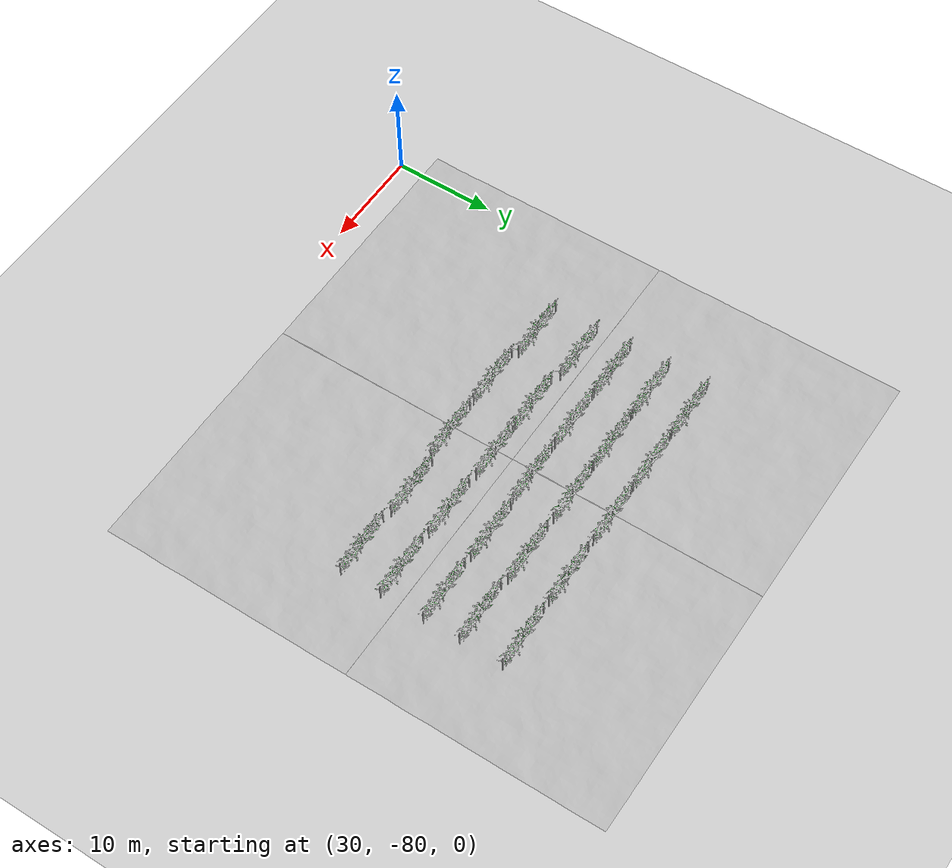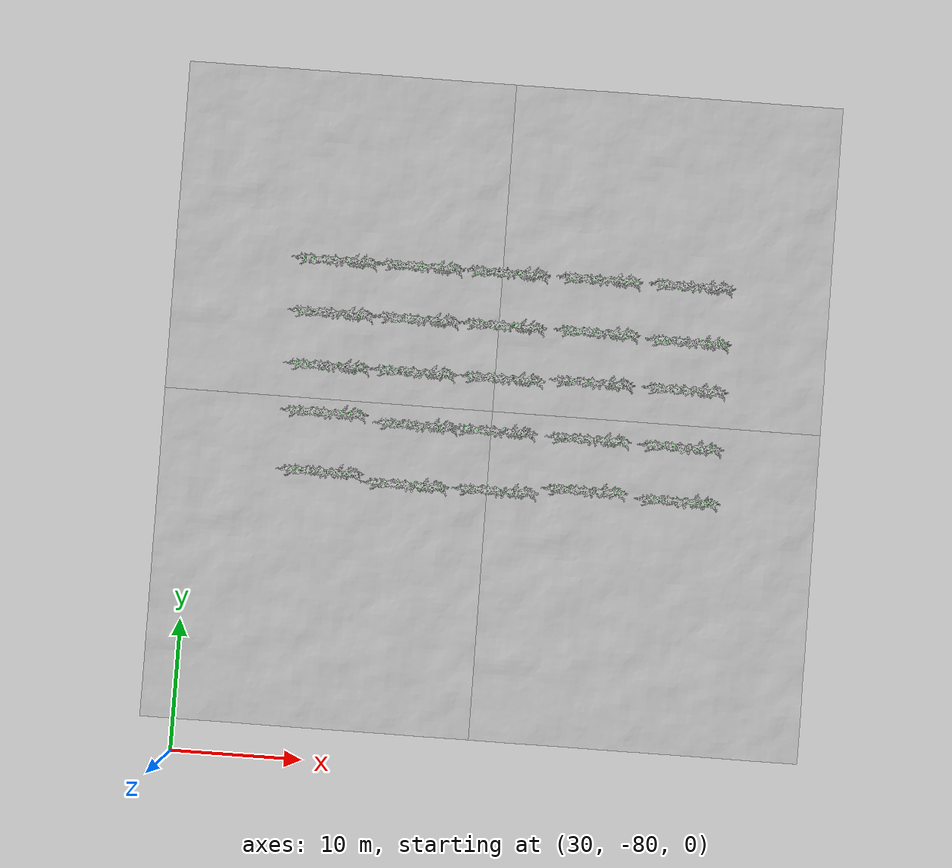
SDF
<sdf version="1.6">
 <world name="default">
  <light name="sun" type="directional">
   <pose>0 0 10 0 -0 0</pose>
   <diffuse>0.8 0.8 0.8 1</diffuse>
   <specular>0.2 0.2 0.2 1</specular>
   <attenuation>
    <range>1000</range>
    <constant>0.9</constant>
    <linear>0.01</linear>
    <quadratic>0.001</quadratic>
   </attenuation>
   <direction>-0.5 0.1 -0.9</direction>
  </light>
  <physics name="default_physics" default="0" type="ode">
   <real_time_update_rate>1000</real_time_update_rate>
   <real_time_factor>1</real_time_factor>
   <max_step_size>0.001</max_step_size>
  </physics>
  <gravity>0 0 -9.8</gravity>
  <magnetic_field>6e-06 2.3e-05 -4.2e-05</magnetic_field>
  <atmosphere type="adiabatic"/>
  <scene>
   <sky><clouds><speed>12</speed></clouds></sky>
   <shadows>1</shadows>
   <ambient>0.4 0.4 0.4 1</ambient>
   <background>0.7 0.7 0.7 1</background>
  </scene>
  <spherical_coordinates>
   <surface_model>EARTH_WGS84</surface_model>
   <latitude_deg>0</latitude_deg>
   <longitude_deg>0</longitude_deg>
   <elevation>0</elevation>
   <heading_deg>0</heading_deg>
  </spherical_coordinates>
  <model name="grass_ground_plane">
   <static>1</static>
   <link name="link">
    <collision name="collision">
     <geometry><plane><normal>0 0 1</normal><size>200 200</size></plane></geometry>
     <surface><friction><ode><mu>0.5</mu><mu2>0.5</mu2></ode></friction></surface>
    </collision>
    <visual name="visual">
     <cast_shadows>0</cast_shadows>
     <geometry><plane><normal>0 0 1</normal><size>200 200</size></plane></geometry>
     <material>
      <script>
       <uri>model://grass_ground_plane/materials/scripts/grass_ground_plane.material</uri>
       <name>GrassGroundPlane/Image</name>
      </script>
     </material>
    </visual>
   </link>
  </model>
  <model name="heightmap">
   <static>1</static>
   <link name="link">
    <collision name="collision">
     <geometry><mesh><uri>model://heightmap_realistic/meshes/heightmap.dae</uri></mesh></geometry>
    </collision>
    <visual name="visual">
     <geometry><mesh><uri>model://heightmap_realistic/meshes/heightmap.dae</uri></mesh></geometry>
    </visual>
   </link>
   <pose>40 -40 0 0 -0 0</pose>
  </model>
  <model name="heightmap_0">
   <static>1</static>
   <link name="link">
    <collision name="collision">
     <geometry><mesh><uri>model://heightmap_realistic/meshes/heightmap.dae</uri></mesh></geometry>
    </collision>
    <visual name="visual">
     <geometry><mesh><uri>model://heightmap_realistic/meshes/heightmap.dae</uri></mesh></geometry>
    </visual>
   </link>
   <pose>65 -40 0 0 -0 0</pose>
  </model>
  <model name="heightmap_1">
   <static>1</static>
   <link name="link">
    <collision name="collision">
     <geometry><mesh><uri>model://heightmap_realistic/meshes/heightmap.dae</uri></mesh></geometry>
    </collision>
    <visual name="visual">
     <geometry><mesh><uri>model://heightmap_realistic/meshes/heightmap.dae</uri></mesh></geometry>
    </visual>
   </link>
   <pose>65 -65 0 0 -0 0</pose>
  </model>
  <model name="heightmap_2">
   <static>1</static>
   <link name="link">
    <collision name="collision">
     <geometry><mesh><uri>model://heightmap_realistic/meshes/heightmap.dae</uri></mesh></geometry>
    </collision>
    <visual name="visual">
     <geometry><mesh><uri>model://heightmap_realistic/meshes/heightmap.dae</uri></mesh></geometry>
    </visual>
   </link>
   <pose>40 -65 0 0 -0 0</pose>
  </model>
  <model name="vine_t0_coarse">
   <static>1</static>
   <link name="link">
    <collision name="collision">
     <geometry><mesh><uri>model://vine_t0_coarse/meshes/vine_t0_coarse.dae</uri></mesh></geometry>
    </collision>
    <visual name="visual">
     <geometry><mesh><uri>model://vine_t0_coarse/meshes/vine_t0_coarse.dae</uri></mesh></geometry>
    </visual>
   </link>
   <pose>40 -42 0 0 -0 0</pose>
  </model>
  <model name="vine_t0_coarse_clone">
   <static>1</static>
   <link name="link">
    <collision name="collision">
     <geometry><mesh><uri>model://vine_t0_coarse/meshes/vine_t0_coarse.dae</uri></mesh></geometry>
    </collision>
    <visual name="visual">
     <geometry><mesh><uri>model://vine_t0_coarse/meshes/vine_t0_coarse.dae</uri></mesh></geometry>
    </visual>
   </link>
   <pose>46.5 -42 0 0 -0 0</pose>
  </model>
  <model name="vine_t0_coarse_clone_clone">
   <static>1</static>
   <link name="link">
    <collision name="collision">
     <geometry><mesh><uri>model://vine_t0_coarse/meshes/vine_t0_coarse.dae</uri></mesh></geometry>
    </collision>
    <visual name="visual">
     <geometry><mesh><uri>model://vine_t0_coarse/meshes/vine_t0_coarse.dae</uri></mesh></geometry>
    </visual>
   </link>
   <pose>53 -42 0 0 -0 0</pose>
  </model>
  <model name="vine_t0_coarse_clone_clone_0">
   <static>1</static>
   <link name="link">
    <collision name="collision">
     <geometry><mesh><uri>model://vine_t0_coarse/meshes/vine_t0_coarse.dae</uri></mesh></geometry>
    </collision>
    <visual name="visual">
     <geometry><mesh><uri>model://vine_t0_coarse/meshes/vine_t0_coarse.dae</uri></mesh></geometry>
    </visual>
   </link>
   <pose>60 -42 0 0 -0 0</pose>
  </model>
  <model name="vine_t0_coarse_clone_clone_1">
   <static>1</static>
   <link name="link">
    <collision name="collision">
     <geometry><mesh><uri>model://vine_t0_coarse/meshes/vine_t0_coarse.dae</uri></mesh></geometry>
    </collision>
    <visual name="visual">
     <geometry><mesh><uri>model://vine_t0_coarse/meshes/vine_t0_coarse.dae</uri></mesh></geometry>
    </visual>
   </link>
   <pose>67 -42 0 0 -0 0</pose>
  </model>
  <model name="vine_t0_coarse_clone_clone_2">
   <static>1</static>
   <link name="link">
    <collision name="collision">
     <geometry><mesh><uri>model://vine_t0_coarse/meshes/vine_t0_coarse.dae</uri></mesh></geometry>
    </collision>
    <visual name="visual">
     <geometry><mesh><uri>model://vine_t0_coarse/meshes/vine_t0_coarse.dae</uri></mesh></geometry>
    </visual>
   </link>
   <pose>40 -46 0 0 -0 0</pose>
  </model>
  <model name="vine_t0_coarse_clone_clone_3">
   <static>1</static>
   <link name="link">
    <collision name="collision">
     <geometry><mesh><uri>model://vine_t0_coarse/meshes/vine_t0_coarse.dae</uri></mesh></geometry>
    </collision>
    <visual name="visual">
     <geometry><mesh><uri>model://vine_t0_coarse/meshes/vine_t0_coarse.dae</uri></mesh></geometry>
    </visual>
   </link>
   <pose>40 -50 0 0 -0 0</pose>
  </model>
  <model name="vine_t0_coarse_clone_clone_4">
   <static>1</static>
   <link name="link">
    <collision name="collision">
     <geometry><mesh><uri>model://vine_t0_coarse/meshes/vine_t0_coarse.dae</uri></mesh></geometry>
    </collision>
    <visual name="visual">
     <geometry><mesh><uri>model://vine_t0_coarse/meshes/vine_t0_coarse.dae</uri></mesh></geometry>
    </visual>
   </link>
   <pose>40 -53.54 0 0 -0 0</pose>
  </model>
  <model name="vine_t0_coarse_clone_clone_5">
   <static>1</static>
   <link name="link">
    <collision name="collision">
     <geometry><mesh><uri>model://vine_t0_coarse/meshes/vine_t0_coarse.dae</uri></mesh></geometry>
    </collision>
    <visual name="visual">
     <geometry><mesh><uri>model://vine_t0_coarse/meshes/vine_t0_coarse.dae</uri></mesh></geometry>
    </visual>
   </link>
   <pose>46.5 -46 0 0 -0 0</pose>
  </model>
  <model name="vine_t0_coarse_clone_clone_6">
   <static>1</static>
   <link name="link">
    <collision name="collision">
     <geometry><mesh><uri>model://vine_t0_coarse/meshes/vine_t0_coarse.dae</uri></mesh></geometry>
    </collision>
    <visual name="visual">
     <geometry><mesh><uri>model://vine_t0_coarse/meshes/vine_t0_coarse.dae</uri></mesh></geometry>
    </visual>
   </link>
   <pose>46.5 -50 0 0 -0 0</pose>
  </model>
  <model name="vine_t0_coarse_clone_clone_7">
   <static>1</static>
   <link name="link">
    <collision name="collision">
     <geometry><mesh><uri>model://vine_t0_coarse/meshes/vine_t0_coarse.dae</uri></mesh></geometry>
    </collision>
    <visual name="visual">
     <geometry><mesh><uri>model://vine_t0_coarse/meshes/vine_t0_coarse.dae</uri></mesh></geometry>
    </visual>
   </link>
   <pose>47 -54 0 0 -0 0</pose>
  </model>
  <model name="vine_t0_coarse_clone_clone_8">
   <static>1</static>
   <link name="link">
    <collision name="collision">
     <geometry><mesh><uri>model://vine_t0_coarse/meshes/vine_t0_coarse.dae</uri></mesh></geometry>
    </collision>
    <visual name="visual">
     <geometry><mesh><uri>model://vine_t0_coarse/meshes/vine_t0_coarse.dae</uri></mesh></geometry>
    </visual>
   </link>
   <pose>53 -46 0 0 -0 0</pose>
  </model>
  <model name="vine_t0_coarse_clone_clone_9">
   <static>1</static>
   <link name="link">
    <collision name="collision">
     <geometry><mesh><uri>model://vine_t0_coarse/meshes/vine_t0_coarse.dae</uri></mesh></geometry>
    </collision>
    <visual name="visual">
     <geometry><mesh><uri>model://vine_t0_coarse/meshes/vine_t0_coarse.dae</uri></mesh></geometry>
    </visual>
   </link>
   <pose>53.2 -50 0 0 -0 0</pose>
  </model>
  <model name="vine_t0_coarse_clone_clone_10">
   <static>1</static>
   <link name="link">
    <collision name="collision">
     <geometry><mesh><uri>model://vine_t0_coarse/meshes/vine_t0_coarse.dae</uri></mesh></geometry>
    </collision>
    <visual name="visual">
     <geometry><mesh><uri>model://vine_t0_coarse/meshes/vine_t0_coarse.dae</uri></mesh></geometry>
    </visual>
   </link>
   <pose>52.9 -54 0 0 -0 0</pose>
  </model>
  <model name="vine_t0_coarse_clone_clone_11">
   <static>1</static>
   <link name="link">
    <collision name="collision">
     <geometry><mesh><uri>model://vine_t0_coarse/meshes/vine_t0_coarse.dae</uri></mesh></geometry>
    </collision>
    <visual name="visual">
     <geometry><mesh><uri>model://vine_t0_coarse/meshes/vine_t0_coarse.dae</uri></mesh></geometry>
    </visual>
   </link>
   <pose>60.1 -46.0129 0 0 -0 0</pose>
  </model>
  <model name="vine_t0_coarse_clone_clone_12">
   <static>1</static>
   <link name="link">
    <collision name="collision">
     <geometry><mesh><uri>model://vine_t0_coarse/meshes/vine_t0_coarse.dae</uri></mesh></geometry>
    </collision>
    <visual name="visual">
     <geometry><mesh><uri>model://vine_t0_coarse/meshes/vine_t0_coarse.dae</uri></mesh></geometry>
    </visual>
   </link>
   <pose>60 -49.8135 0 0 -0 0</pose>
  </model>
  <model name="vine_t0_coarse_clone_clone_13">
   <static>1</static>
   <link name="link">
    <collision name="collision">
     <geometry><mesh><uri>model://vine_t0_coarse/meshes/vine_t0_coarse.dae</uri></mesh></geometry>
    </collision>
    <visual name="visual">
     <geometry><mesh><uri>model://vine_t0_coarse/meshes/vine_t0_coarse.dae</uri></mesh></geometry>
    </visual>
   </link>
   <pose>60 -54.1038 0 0 -0 0</pose>
  </model>
  <model name="vine_t0_coarse_clone_clone_14">
   <static>1</static>
   <link name="link">
    <collision name="collision">
     <geometry><mesh><uri>model://vine_t0_coarse/meshes/vine_t0_coarse.dae</uri></mesh></geometry>
    </collision>
    <visual name="visual">
     <geometry><mesh><uri>model://vine_t0_coarse/meshes/vine_t0_coarse.dae</uri></mesh></geometry>
    </visual>
   </link>
   <pose>67 -46.2199 0 0 -0 0</pose>
  </model>
  <model name="vine_t0_coarse_clone_clone_15">
   <static>1</static>
   <link name="link">
    <collision name="collision">
     <geometry><mesh><uri>model://vine_t0_coarse/meshes/vine_t0_coarse.dae</uri></mesh></geometry>
    </collision>
    <visual name="visual">
     <geometry><mesh><uri>model://vine_t0_coarse/meshes/vine_t0_coarse.dae</uri></mesh></geometry>
    </visual>
   </link>
   <pose>67 -49.8499 0 0 -0 0</pose>
  </model>
  <model name="vine_t0_coarse_clone_clone_16">
   <static>1</static>
   <link name="link">
    <collision name="collision">
     <geometry><mesh><uri>model://vine_t0_coarse/meshes/vine_t0_coarse.dae</uri></mesh></geometry>
    </collision>
    <visual name="visual">
     <geometry><mesh><uri>model://vine_t0_coarse/meshes/vine_t0_coarse.dae</uri></mesh></geometry>
    </visual>
   </link>
   <pose>67 -54.1902 0 0 -0 0</pose>
  </model>
  <model name="vine_t0_coarse_clone_clone_17">
   <static>1</static>
   <link name="link">
    <collision name="collision">
     <geometry><mesh><uri>model://vine_t0_coarse/meshes/vine_t0_coarse.dae</uri></mesh></geometry>
    </collision>
    <visual name="visual">
     <geometry><mesh><uri>model://vine_t0_coarse/meshes/vine_t0_coarse.dae</uri></mesh></geometry>
    </visual>
   </link>
   <pose>40 -58 0 0 -0 0</pose>
  </model>
  <model name="vine_t0_coarse_clone_clone_18">
   <static>1</static>
   <link name="link">
    <collision name="collision">
     <geometry><mesh><uri>model://vine_t0_coarse/meshes/vine_t0_coarse.dae</uri></mesh></geometry>
    </collision>
    <visual name="visual">
     <geometry><mesh><uri>model://vine_t0_coarse/meshes/vine_t0_coarse.dae</uri></mesh></geometry>
    </visual>
   </link>
   <pose>46.5 -58.5457 0 0 -0 0</pose>
  </model>
  <model name="vine_t0_coarse_clone_clone_19">
   <static>1</static>
   <link name="link">
    <collision name="collision">
     <geometry><mesh><uri>model://vine_t0_coarse/meshes/vine_t0_coarse.dae</uri></mesh></geometry>
    </collision>
    <visual name="visual">
     <geometry><mesh><uri>model://vine_t0_coarse/meshes/vine_t0_coarse.dae</uri></mesh></geometry>
    </visual>
   </link>
   <pose>53.3 -58.5 0 0 -0 0</pose>
  </model>
  <model name="vine_t0_coarse_clone_clone_20">
   <static>1</static>
   <link name="link">
    <collision name="collision">
     <geometry><mesh><uri>model://vine_t0_coarse/meshes/vine_t0_coarse.dae</uri></mesh></geometry>
    </collision>
    <visual name="visual">
     <geometry><mesh><uri>model://vine_t0_coarse/meshes/vine_t0_coarse.dae</uri></mesh></geometry>
    </visual>
   </link>
   <pose>60 -58 0 0 -0 0</pose>
  </model>
  <model name="vine_t0_coarse_clone_clone_21">
   <static>1</static>
   <link name="link">
    <collision name="collision">
     <geometry><mesh><uri>model://vine_t0_coarse/meshes/vine_t0_coarse.dae</uri></mesh></geometry>
    </collision>
    <visual name="visual">
     <geometry><mesh><uri>model://vine_t0_coarse/meshes/vine_t0_coarse.dae</uri></mesh></geometry>
    </visual>
   </link>
   <pose>67 -58.2744 0 0 -0 0</pose>
  </model>
 </world>
</sdf>
